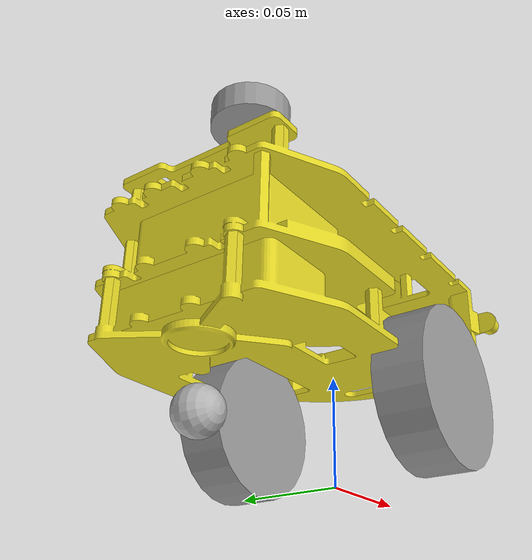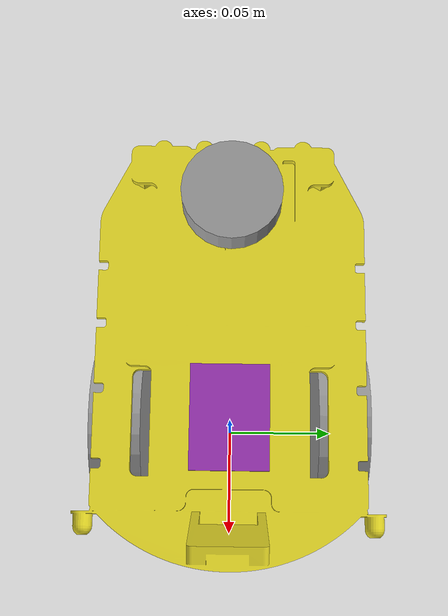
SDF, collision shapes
<?xml version="1.0" ?>
<sdf version="1.5">

  <model name="sorcerer">
    <pose>0 0 0 0 0 0</pose>

    <link name="base_footprint"/>

    <joint name="base_joint" type="fixed">
      <parent>base_footprint</parent>
      <child>base_link</child>
      <pose>0 0 0 0 0 0</pose>
    </joint>
    <link name="base_link">
      <pose>0 0 0.03425 0 0 0</pose>
      <inertial>
        <pose>-0.062337 -0.000034 0.039639 0 0 0</pose>
        <inertia>
          <ixx>0.001570977</ixx>
          <ixy>-0.000000435</ixy>
          <ixz>-0.000319893</ixz>
          <iyy>0.002313446</iyy>
          <iyz>0.000001871</iyz>
          <izz>0.002976412</izz>
        </inertia>
        <mass>1.2</mass>
      </inertial>
      <collision name="base_collision">
        <pose>0 0 0.0136 0 0 0</pose>
        <geometry>
          <mesh>
            <uri>model://common/meshes/sorcerer.stl</uri>
            <scale>0.001 0.001 0.001</scale>
          </mesh>
        </geometry>
      </collision>
      <visual name="base_visual">
        <pose>0 0 0.0136 0 0 0</pose>
        <geometry>
          <mesh>
            <uri>model://common/meshes/sorcerer.stl</uri>
            <scale>0.001 0.001 0.001</scale>
          </mesh>
        </geometry>
        <material>
          <script>
            <uri>file://media/materials/scripts/gazebo.material</uri>
            <name>Gazebo/Yellow</name>
          </script>
        </material>
      </visual>
    </link>

    <joint name="wheel_left_joint" type="revolute">
      <parent>base_link</parent>
      <child>wheel_left_link</child>
      <axis>
        <xyz>0 1 0</xyz>
      </axis>
    </joint>
    <link name="wheel_left_link">
      <pose>0 0.05 0.03425 0 0 0</pose>
      <inertial>
        <pose>0 0 0 -1.57 0 0</pose>
        <inertia>
          <ixx>2.29346485819975e-5</ixx>
          <ixy>0</ixy>
          <ixz>0</ixz>
          <iyy>4.19370640001351e-5</iyy>
          <iyz>0</iyz>
          <izz>2.29346485819975e-5</izz>
        </inertia>
        <mass>0.06</mass>
      </inertial>
      <collision name="wheel_left_collision">
        <pose>0 0 0 -1.57 0 0</pose>
        <geometry>
          <cylinder>
            <radius>0.03475</radius>
            <length>0.0225</length>
          </cylinder>
        </geometry>
        <surface>
          <friction>
            <ode>
              <mu>100000.0</mu>
              <mu2>100000.0</mu2>
              <fdir1>0 0 0</fdir1>
              <slip1>0.0</slip1>
              <slip2>0.0</slip2>
            </ode>
          </friction>
          <contact>
            <ode>
              <soft_cfm>0</soft_cfm>
              <soft_erp>0.2</soft_erp>
              <kp>5e+5</kp>
              <kd>1</kd>
              <max_vel>0.01</max_vel>
              <min_depth>0.001</min_depth>
            </ode>
          </contact>
        </surface>
      </collision>
      <visual name="wheel_left_visual">
        <pose>0 0 0 0 0 0</pose>
        <geometry>
          <mesh>
            <uri>model://common/meshes/wheel_left.stl</uri>
            <scale>0.001 0.001 0.001</scale>
          </mesh>
        </geometry>
        <material>
          <script>
            <uri>file://media/materials/scripts/gazebo.material</uri>
            <name>Gazebo/Grey</name>
          </script>
        </material>
      </visual>
    </link>

    <joint name="wheel_right_joint" type="revolute">
      <parent>base_link</parent>
      <child>wheel_right_link</child>
      <axis>
        <xyz>0 1 0</xyz>
      </axis>
    </joint>
    <link name="wheel_right_link">
      <pose>0 -0.05 0.03425 0 0 0</pose>
      <inertial>
        <pose>0 0 0 -1.57 0 0</pose>
        <inertia>
          <ixx>2.29346485819975e-5</ixx>
          <ixy>0</ixy>
          <ixz>0</ixz>
          <iyy>4.19370640001351e-5</iyy>
          <iyz>0</iyz>
          <izz>2.29346485819975e-5</izz>
        </inertia>
        <mass>0.06</mass>
      </inertial>
      <collision name="wheel_right_collision">
        <pose>0 0 0 -1.57 0 0</pose>
        <geometry>
          <cylinder>
            <radius>0.03475</radius>
            <length>0.0225</length>
          </cylinder>
        </geometry>
        <surface>
          <friction>
            <ode>
              <mu>100000.0</mu>
              <mu2>100000.0</mu2>
              <fdir1>0 0 0</fdir1>
              <slip1>0.0</slip1>
              <slip2>0.0</slip2>
            </ode>
          </friction>
          <contact>
            <ode>
              <soft_cfm>0</soft_cfm>
              <soft_erp>0.2</soft_erp>
              <kp>5e+5</kp>
              <kd>1</kd>
              <max_vel>0.01</max_vel>
              <min_depth>0.001</min_depth>
            </ode>
          </contact>
        </surface>
      </collision>
      <visual name="wheel_right_visual">
        <pose>0 0 0 0 0 0</pose>
        <geometry>
          <mesh>
            <uri>model://common/meshes/wheel_right.stl</uri>
            <scale>0.001 0.001 0.001</scale>
          </mesh>
        </geometry>
        <material>
          <script>
            <uri>file://media/materials/scripts/gazebo.material</uri>
            <name>Gazebo/Grey</name>
          </script>
        </material>
      </visual>
    </link>

    <joint name='caster_back_joint' type='ball'>
      <parent>base_link</parent>
      <child>caster_back_link</child>
    </joint>
    <link name='caster_back_link'>
      <pose>-0.09 0 0.01 -1.57 0 0</pose>
      <inertial>
        <mass>0.1</mass>
        <inertia>
          <ixx>0.00001</ixx>
          <ixy>0.0</ixy>
          <ixz>0.0</ixz>
          <iyy>0.00001</iyy>
          <iyz>0.0</iyz>
          <izz>0.00001</izz>
        </inertia>
      </inertial>
      <collision name='caster_back_link_collision'>
        <geometry>
          <sphere>
            <radius>0.01</radius>
          </sphere>
        </geometry>
        <surface>
          <contact>
            <ode>
              <soft_cfm>0</soft_cfm>
              <soft_erp>0.2</soft_erp>
              <kp>1e+6</kp>
              <kd>1</kd>
              <max_vel>0.01</max_vel>
              <min_depth>0.001</min_depth>
            </ode>
          </contact>
        </surface>
      </collision>
      <visual name='caster_back_link_visual'>
        <geometry>
          <sphere>
            <radius>0.01</radius>
          </sphere>
        </geometry>
      </visual>
    </link>

    <joint name="scan_joint" type="fixed">
      <parent>base_link</parent>
      <child>base_scan</child>
      <axis>
        <xyz>0 0 1</xyz>
      </axis>
    </joint>
    <link name="base_scan">
      <pose>-0.067 0 0.15425 0 0 0</pose>
      <inertial>
        <pose>0 0 0 0 0 0</pose>
        <inertia>
          <ixx>0.00001</ixx>
          <ixy>0.000</ixy>
          <ixz>0.000</ixz>
          <iyy>0.00001</iyy>
          <iyz>0.000</iyz>
          <izz>0.00001</izz>
        </inertia>
        <mass>0.1</mass>
      </inertial>
      <collision name="base_scan_collision">
        <pose>0 0 0 0 0 0</pose>
        <geometry>
          <cylinder>
            <radius>0.018</radius>
            <length>0.012</length>
          </cylinder>
        </geometry>
      </collision>
      <visual name="base_scan_visual">
        <pose>0 0 0 0 0 0</pose>
        <geometry>
          <cylinder>
            <radius>0.018</radius>
            <length>0.012</length>
          </cylinder>
        </geometry>
        <material>
          <script>
            <uri>file://media/materials/scripts/gazebo.material</uri>
            <name>Gazebo/Grey</name>
          </script>
        </material>
      </visual>
      <sensor name="base_scan_sensor" type="ray">
        <always_on>true</always_on>
        <visualize>false</visualize>
        <pose>0 0 0 0 0 0</pose>
        <update_rate>5</update_rate>
        <ray>
          <scan>
            <horizontal>
              <samples>360</samples>
              <resolution>1.000000</resolution>
              <min_angle>0.000000</min_angle>
              <max_angle>6.280000</max_angle>
            </horizontal>
          </scan>
          <range>
            <min>0.120000</min>
            <max>3.5</max>
            <resolution>0.015000</resolution>
          </range>
          <noise>
            <type>gaussian</type>
            <mean>0.0</mean>
            <stddev>0.01</stddev>
          </noise>
        </ray>
        <plugin name="sorcerer_laserscan" filename="libgazebo_ros_ray_sensor.so">
          <ros>
            <remapping>~/out:=scan</remapping>
          </ros>
          <output_type>sensor_msgs/LaserScan</output_type>
          <frame_name>base_scan</frame_name>
        </plugin>
      </sensor>
    </link>

    <joint name="imu_joint" type="fixed">
      <parent>base_link</parent>
      <child>imu_link</child>
    </joint>
    <link name="imu_link">
      <pose>0.008 0 0.12265 0 0 0</pose>
      <collision name='imu_link_collision'>
        <pose>0 0 0 0 0 0</pose>
        <geometry>
          <box>
            <size>0.04 0.03 0.0016</size>
          </box>
        </geometry>
      </collision>
      <visual name="imu_link_visual">
        <pose>0 0 0 0 0 0</pose>
        <geometry>
          <box>
            <size>0.04 0.03 0.0016</size>
          </box>
        </geometry>
        <material>
          <script>
            <uri>file://media/materials/scripts/gazebo.material</uri>
            <name>Gazebo/Purple</name>
          </script>
        </material>
      </visual>
      <sensor name="imu_link_sensor" type="imu">
        <always_on>true</always_on>
        <update_rate>60</update_rate>
        <imu>
          <angular_velocity>
            <x>
              <noise type="gaussian">
                <mean>0.0</mean>
                <stddev>2e-4</stddev>
              </noise>
            </x>
            <y>
              <noise type="gaussian">
                <mean>0.0</mean>
                <stddev>2e-4</stddev>
              </noise>
            </y>
            <z>
              <noise type="gaussian">
                <mean>0.0</mean>
                <stddev>2e-4</stddev>
              </noise>
            </z>
          </angular_velocity>
          <linear_acceleration>
            <x>
              <noise type="gaussian">
                <mean>0.0</mean>
                <stddev>1.7e-2</stddev>
              </noise>
            </x>
            <y>
              <noise type="gaussian">
                <mean>0.0</mean>
                <stddev>1.7e-2</stddev>
              </noise>
            </y>
            <z>
              <noise type="gaussian">
                <mean>0.0</mean>
                <stddev>1.7e-2</stddev>
              </noise>
            </z>
          </linear_acceleration>
        </imu>
        <plugin name="sorcerer_imu" filename="libgazebo_ros_imu_sensor.so">
          <ros>
            <remapping>~/out:=/imu/data</remapping>
          </ros>
        </plugin>
      </sensor>
    </link>

    <plugin name="sorcerer_diff_drive" filename="libgazebo_ros_diff_drive.so">
      <ros>
      </ros>
      <update_rate>30</update_rate>
      <left_joint>wheel_left_joint</left_joint>
      <right_joint>wheel_right_joint</right_joint>
      <wheel_separation>0.1</wheel_separation>
      <wheel_diameter>0.0685</wheel_diameter>
      <max_wheel_torque>20</max_wheel_torque>
      <max_wheel_acceleration>1.0</max_wheel_acceleration>
      <command_topic>cmd_vel</command_topic>
      <publish_odom>true</publish_odom>
      <publish_odom_tf>false</publish_odom_tf>
      <publish_wheel_tf>false</publish_wheel_tf>
      <odometry_topic>odom</odometry_topic>
      <odometry_frame>odom</odometry_frame>
      <odometry_source>0</odometry_source> <!-- 0: encoder, 1: world -->
      <robot_base_frame>base_footprint</robot_base_frame>
    </plugin>
    <plugin name="sorcerer_joint_state" filename="libgazebo_ros_joint_state_publisher.so">
      <ros>
        <remapping>~/out:=joint_states</remapping>
      </ros>
      <update_rate>30</update_rate>
      <joint_name>wheel_left_joint</joint_name>
      <joint_name>wheel_right_joint</joint_name>
    </plugin>
  </model>
</sdf>
